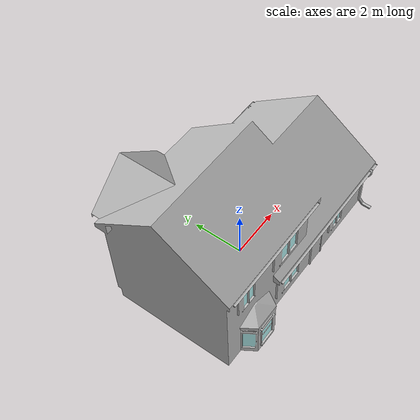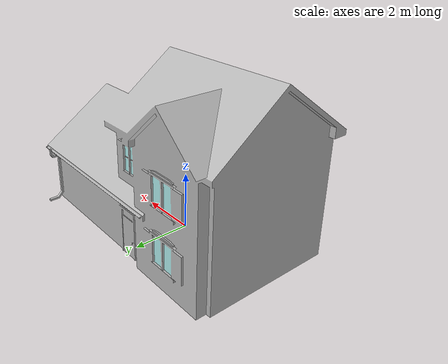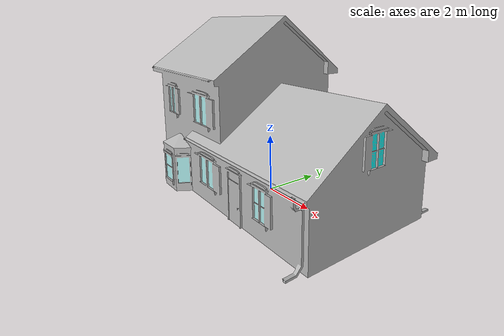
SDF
<?xml version="1.0"?>
<sdf version="1.4">
  <model name="House 4">
    <static>true</static>
    <link name="link">
      <collision name="collision">
        <geometry>
          <mesh>
            <uri>model://house_4/meshes/house_4.dae</uri>
        </mesh>
      </geometry>
    </collision>
      <visual name="visual">
        <geometry>
          <mesh>
            <uri>model://house_4/meshes/house_4.dae</uri>
        </mesh>
      </geometry>
    </visual>
  </link>
</model>
</sdf>
